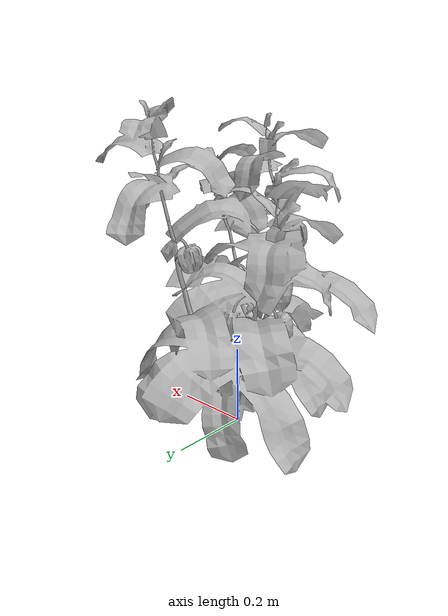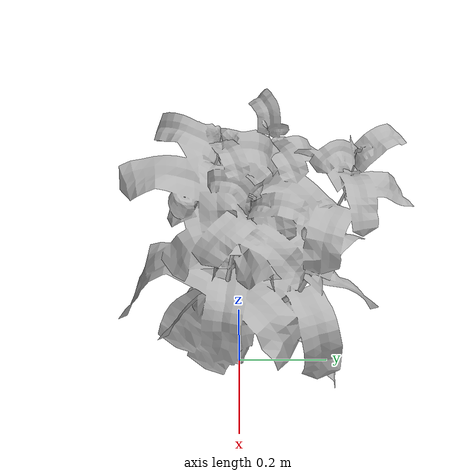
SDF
<?xml version='1.0'?>
<sdf version='1.6'>
  <model name='capsicum_plant_6'>
    <link name='link_capsicum_plant_6'>
       <visual name='visual'>
        <pose frame=''>0 0 0 0 0 0</pose>
        <geometry>
          <mesh>
            <uri>model://capsicum_plant_6/meshes/VG07_6.dae</uri>
          </mesh>
        </geometry>
      </visual>
    </link>
    <static>1</static>
  </model>
</sdf>
